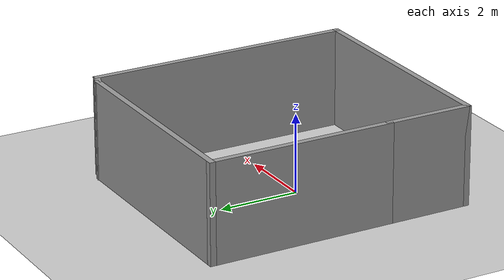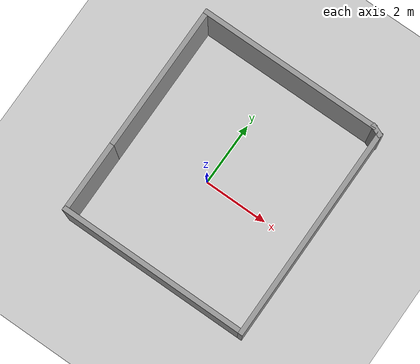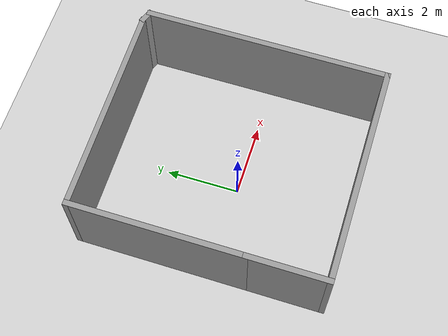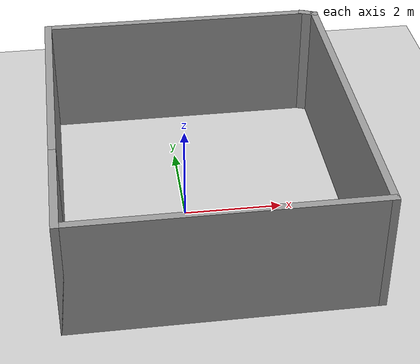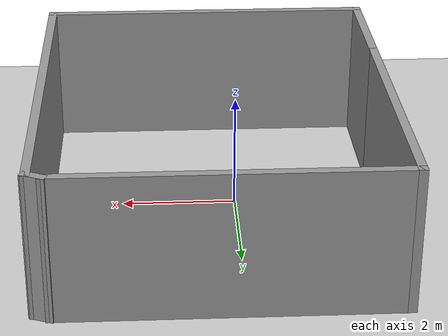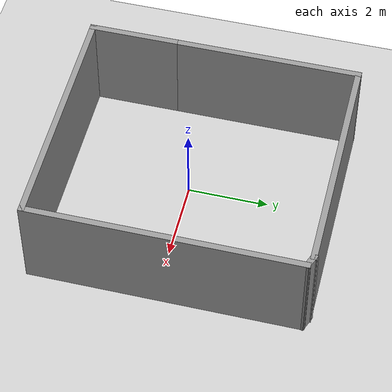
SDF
<?xml version="1.0"?>
<sdf version="1.4">
  <world name="default">

    <include>
      <uri>model://sun</uri>
    </include>
    <include>
      <uri>model://ground_plane</uri>
    </include>

    <model name='square_room'>
    <pose>0.397392 0.284024 0 0 -0 0</pose>
    <link name='Wall_4'>
      <collision name='Wall_4_Collision'>
        <geometry>
          <box>
            <size>5.75 0.15 2.5</size>
          </box>
        </geometry>
        <pose>0 0 1.25 0 -0 0</pose>
      </collision>
      <visual name='Wall_4_Visual'>
        <pose>0 0 1.25 0 -0 0</pose>
        <geometry>
          <box>
            <size>5.75 0.15 2.5</size>
          </box>
        </geometry>
        <material>
          <script>
            <uri>file://media/materials/scripts/gazebo.material</uri>
            <name>Gazebo/Grey</name>
          </script>
          <ambient>1 1 1 1</ambient>
        </material>
        <meta>
          <layer>0</layer>
        </meta>
      </visual>
      <pose>-0.136245 3.33875 0 0 -0 3.14159</pose>
    </link>
    <link name='Wall_5'>
      <collision name='Wall_5_Collision'>
        <geometry>
          <box>
            <size>4.75 0.15 2.5</size>
          </box>
        </geometry>
        <pose>0 0 1.25 0 -0 0</pose>
      </collision>
      <visual name='Wall_5_Visual'>
        <pose>0 0 1.25 0 -0 0</pose>
        <geometry>
          <box>
            <size>4.75 0.15 2.5</size>
          </box>
        </geometry>
        <material>
          <script>
            <uri>file://media/materials/scripts/gazebo.material</uri>
            <name>Gazebo/Grey</name>
          </script>
          <ambient>1 1 1 1</ambient>
        </material>
        <meta>
          <layer>0</layer>
        </meta>
      </visual>
      <pose>-2.93624 1.03876 0 0 -0 -1.5708</pose>
    </link>
    <link name='Wall_6'>
      <collision name='Wall_6_Collision'>
        <geometry>
          <box>
            <size>2.25 0.15 2.5</size>
          </box>
        </geometry>
        <pose>0 0 1.25 0 -0 0</pose>
      </collision>
      <visual name='Wall_6_Visual'>
        <pose>0 0 1.25 0 -0 0</pose>
        <geometry>
          <box>
            <size>2.25 0.15 2.5</size>
          </box>
        </geometry>
        <material>
          <script>
            <uri>file://media/materials/scripts/gazebo.material</uri>
            <name>Gazebo/Grey</name>
          </script>
          <ambient>1 1 1 1</ambient>
        </material>
        <meta>
          <layer>0</layer>
        </meta>
      </visual>
      <pose>-2.93624 -2.31124 0 0 -0 -1.5708</pose>
    </link>
    <link name='Wall_7'>
      <collision name='Wall_7_Collision'>
        <geometry>
          <box>
            <size>6 0.15 2.5</size>
          </box>
        </geometry>
        <pose>0 0 1.25 0 -0 0</pose>
      </collision>
      <visual name='Wall_7_Visual'>
        <pose>0 0 1.25 0 -0 0</pose>
        <geometry>
          <box>
            <size>6 0.15 2.5</size>
          </box>
        </geometry>
        <material>
          <script>
            <uri>file://media/materials/scripts/gazebo.material</uri>
            <name>Gazebo/Grey</name>
          </script>
          <ambient>1 1 1 1</ambient>
        </material>
        <meta>
          <layer>0</layer>
        </meta>
      </visual>
      <pose>-0.011245 -3.36124 0 0 -0 0</pose>
    </link>
    <link name='Wall_8'>
      <collision name='Wall_8_Collision'>
        <geometry>
          <box>
            <size>6.75 0.15 2.5</size>
          </box>
        </geometry>
        <pose>0 0 1.25 0 -0 0</pose>
      </collision>
      <visual name='Wall_8_Visual'>
        <pose>0 0 1.25 0 -0 0</pose>
        <geometry>
          <box>
            <size>6.75 0.15 2.5</size>
          </box>
        </geometry>
        <material>
          <script>
            <uri>file://media/materials/scripts/gazebo.material</uri>
            <name>Gazebo/Grey</name>
          </script>
          <ambient>1 1 1 1</ambient>
        </material>
        <meta>
          <layer>0</layer>
        </meta>
      </visual>
      <pose>2.91376 -0.061245 0 0 -0 1.5708</pose>
    </link>
    <link name='Wall_9'>
      <collision name='Wall_9_Collision'>
        <geometry>
          <box>
            <size>0.419258 0.15 2.5</size>
          </box>
        </geometry>
        <pose>0 0 1.25 0 -0 0</pose>
      </collision>
      <visual name='Wall_9_Visual'>
        <pose>0 0 1.25 0 -0 0</pose>
        <geometry>
          <box>
            <size>0.419258 0.15 2.5</size>
          </box>
        </geometry>
        <material>
          <script>
            <uri>file://media/materials/scripts/gazebo.material</uri>
            <name>Gazebo/Grey</name>
          </script>
          <ambient>1 1 1 1</ambient>
        </material>
        <meta>
          <layer>0</layer>
        </meta>
      </visual>
      <pose>2.78876 3.28876 0 0 -0 2.76109</pose>
    </link>
    <static>1</static>
  </model>

    <physics type="ode">
      <real_time_update_rate>1000.0</real_time_update_rate>
      <max_step_size>0.001</max_step_size>
      <real_time_factor>1</real_time_factor>
      <ode>
        <solver>
          <type>quick</type>
          <iters>150</iters>
          <precon_iters>0</precon_iters>
          <sor>1.400000</sor>
          <use_dynamic_moi_rescaling>1</use_dynamic_moi_rescaling>
        </solver>
        <constraints>
          <cfm>0.00001</cfm>
          <erp>0.2</erp>
          <contact_max_correcting_vel>2000.000000</contact_max_correcting_vel>
          <contact_surface_layer>0.01000</contact_surface_layer>
        </constraints>
      </ode>
    </physics>
  </world>
</sdf>
